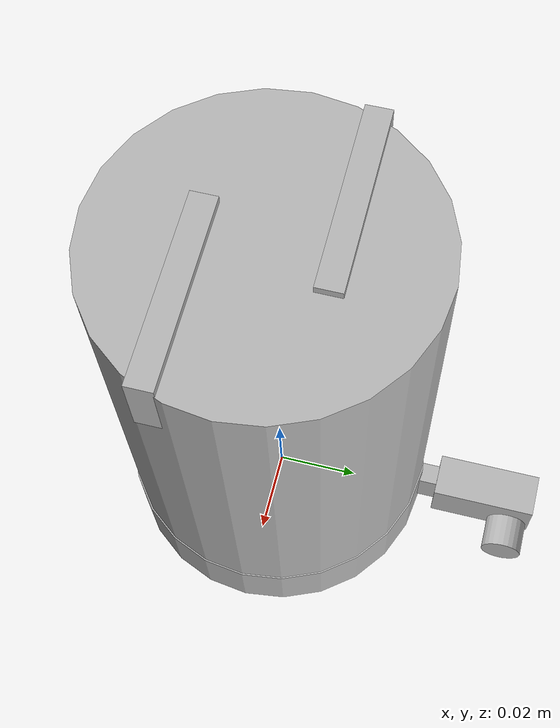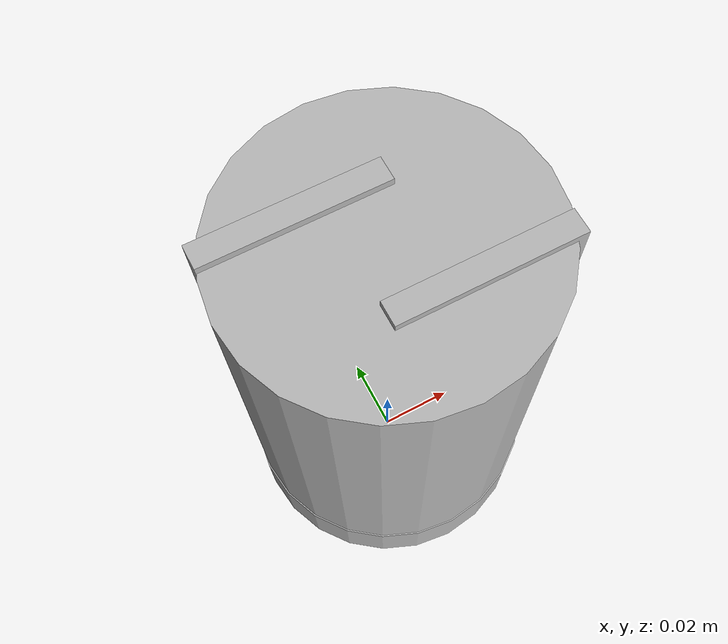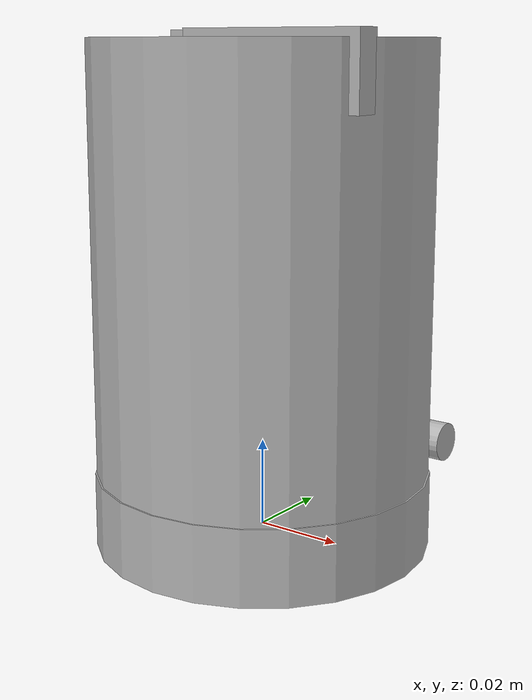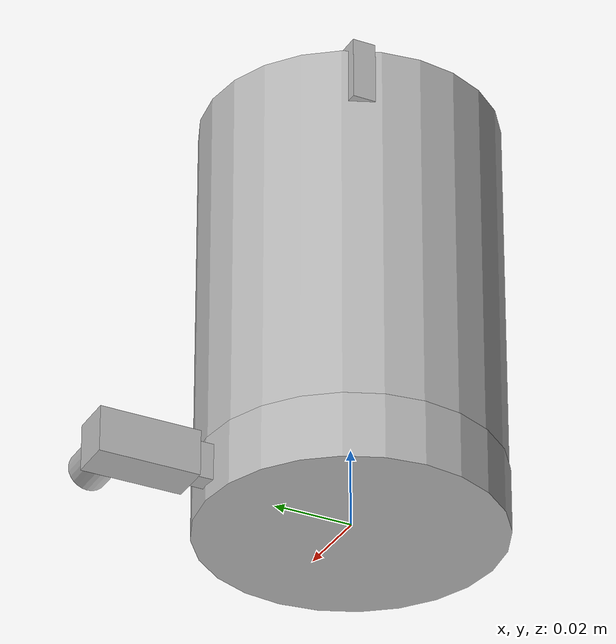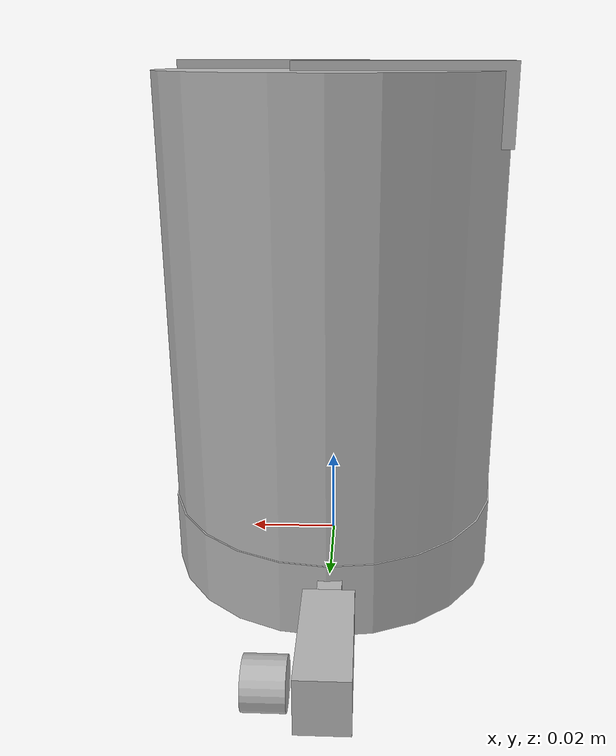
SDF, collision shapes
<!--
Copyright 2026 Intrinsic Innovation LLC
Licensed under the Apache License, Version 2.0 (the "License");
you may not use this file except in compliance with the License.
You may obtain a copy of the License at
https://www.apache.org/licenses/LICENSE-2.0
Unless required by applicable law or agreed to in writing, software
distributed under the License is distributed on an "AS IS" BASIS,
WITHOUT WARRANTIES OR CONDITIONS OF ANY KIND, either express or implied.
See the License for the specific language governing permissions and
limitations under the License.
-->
<?xml version="1.0" ?>

<sdf version="1.9">

  <model name="robotiq_hande_no_fingers">
    <include merge="true">
      <uri>model://intrinsic_control/intrinsic/models/assets/standard_tooling/robotiq_hande/robotiq_hande_no_fingers</uri>
    </include>
  </model>
</sdf>

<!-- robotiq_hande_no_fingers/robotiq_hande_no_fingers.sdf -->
<sdf version="1.9" xmlns:intrinsic="https://intrinsic.ai/">
  <model name="robotiq_hande_no_fingers">
    <!-- Base of the gripper -->
    <link name="gripper_body">
      <inertial>
        <mass>1</mass>
        <inertia>
          <ixx>0.1</ixx>
          <ixy>0</ixy>
          <ixz>0</ixz>
          <iyy>0.1</iyy>
          <iyz>0</iyz>
          <izz>0.1</izz>
        </inertia>
      </inertial>
      <visual name="visual_io_coupler">
        <pose>0 0 0.0070 0 0 0</pose>
        <geometry>
          <mesh>
            <uri>model://intrinsic_control/intrinsic/models/assets/standard_tooling/robotiq_hande/io_coupler_visual.glb</uri>
          </mesh>
        </geometry>
      </visual>
      <visual name="visual_body">
        <pose>0 0 0.0139 0 0 0</pose>
        <geometry>
          <mesh>
            <uri>model://intrinsic_control/intrinsic/models/assets/standard_tooling/robotiq_hande/base_visual.glb</uri>
          </mesh>
        </geometry>
      </visual>
      <!-- Primitive cylinder/box colliders from CAD exports (Hand-e/model.sdf shifted by +0.0139 m
           in Z, and IO Adapter/model.sdf shifted by +0.0070 m in Z). -->
      <collision name="collision_body">
        <pose>0 0 0.06177 0 0 -1.570796</pose>
        <geometry>
          <cylinder>
            <radius>0.037544</radius>
            <length>0.09574</length>
          </cylinder>
        </geometry>
      </collision>
      <collision name="collision_io_coupler">
        <pose>0 0 0.00545 0 0 0</pose>
        <geometry>
          <cylinder>
            <radius>0.0379</radius>
            <length>0.0169</length>
          </cylinder>
        </geometry>
      </collision>
      <collision name="collision_io_coupler_box1">
        <pose>-0.000733 0.054862 0.005695 0 1.570796 0</pose>
        <geometry>
          <box>
            <size>0.011817 0.025604 0.010486</size>
          </box>
        </geometry>
      </collision>
      <collision name="collision_io_coupler_box2">
        <pose>-0.000739 0.037415 0.00575 0 0 0</pose>
        <geometry>
          <box>
            <size>0.005041 0.011557 0.0095</size>
          </box>
        </geometry>
      </collision>
      <collision name="collision_io_coupler_cyl">
        <pose>0.009816 0.061755 0.005695 0 1.570796 0</pose>
        <geometry>
          <cylinder>
            <radius>0.005</radius>
            <length>0.008147</length>
          </cylinder>
        </geometry>
      </collision>
    </link>

    <!-- Fingers and their prismatic joints (rack colliders from Hand-e/model.sdf shifted by +0.0139 m in Z) -->
    <link name="finger_1_rack">
      <visual name="visual_finger_1_rack">
        <pose>0 0 0.0139 0 0 0</pose>
        <geometry>
          <mesh>
            <uri>model://intrinsic_control/intrinsic/models/assets/standard_tooling/robotiq_hande/jaw_l_visual.glb</uri>
          </mesh>
        </geometry>
      </visual>
      <collision name="collision_finger_1_rack">
        <pose>-0.014107 0.01425 0.1033 0 0 -4.712389</pose>
        <geometry>
          <box>
            <size>0.005967 0.04339 0.0164</size>
          </box>
        </geometry>
      </collision>
    </link>
    <link name="finger_2_rack">
      <visual name="visual_finger_2_rack">
        <pose>0 0 0.0139 0 0 0</pose>
        <geometry>
          <mesh>
            <uri>model://intrinsic_control/intrinsic/models/assets/standard_tooling/robotiq_hande/jaw_r_visual.glb</uri>
          </mesh>
        </geometry>
      </visual>
      <collision name="collision_finger_2_rack">
        <pose>0.013949 -0.01425 0.1033 0 0 -1.570796</pose>
        <geometry>
          <box>
            <size>0.005967 0.043104 0.0164</size>
          </box>
        </geometry>
      </collision>
    </link>
    <joint name="finger_1_joint" type="prismatic">
      <parent>gripper_body</parent>
      <child>finger_1_rack</child>
      <pose>0 0 0 0 0 0</pose>
      <axis>
        <xyz>1 0 0</xyz>
        <limit>
          <lower>0</lower>
          <upper>0.025</upper>
        </limit>
      </axis>
    </joint>
    <joint name="finger_2_joint" type="prismatic">
      <parent>gripper_body</parent>
      <child>finger_2_rack</child>
      <pose>0 0 0 0 0 0</pose>
      <axis>
        <xyz>-1 0 0</xyz>
        <limit>
          <lower>0</lower>
          <upper>0.025</upper>
        </limit>
      </axis>
    </joint>

    <!-- Attachment frames -->
    <frame name="finger_1_attach_frame" attached_to="finger_1_rack" intrinsic:create_attachment_entity="true">
      <pose relative_to="finger_1_rack">-0.026514 0.01425 0.1115 0 0 0</pose>
    </frame>

    <frame name="finger_2_attach_frame" attached_to="finger_2_rack" intrinsic:create_attachment_entity="true">
      <pose relative_to="finger_2_rack">0.026514 -0.01425 0.1115 0 0 0</pose>
    </frame>

    <frame name="tool_frame" attached_to="gripper_body" intrinsic:create_entity="true">
      <pose relative_to="gripper_body">0 0 0.128 0 0 0</pose>
    </frame>
  </model>
</sdf>
